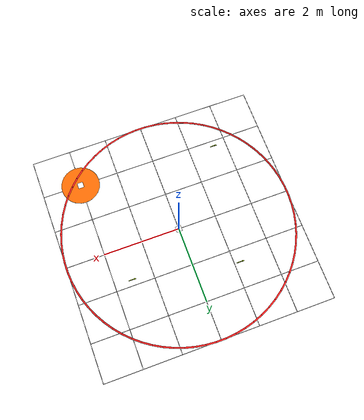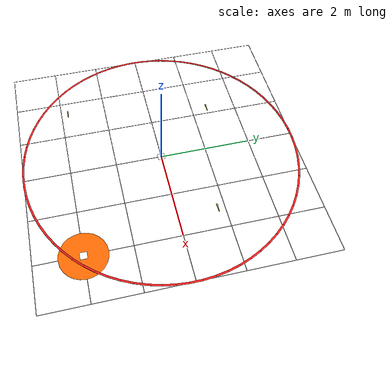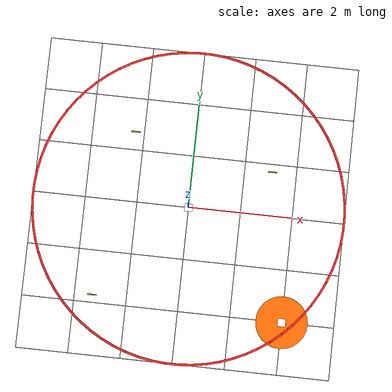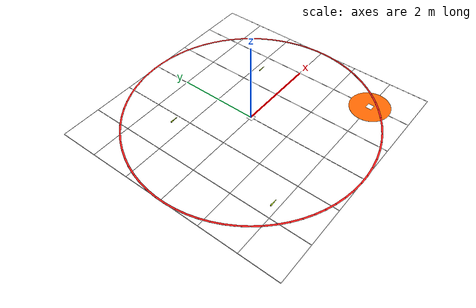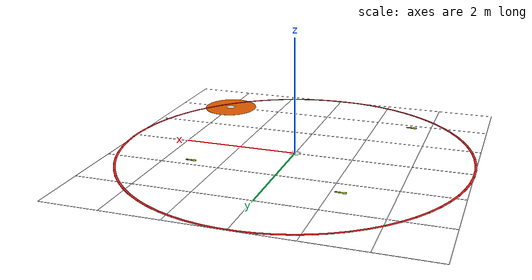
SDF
<sdf version="1.9">
 <world name="drone_cage">
  <plugin filename="gz-sim-physics-system" name="gz::sim::systems::Physics"/>
  <plugin filename="gz-sim-user-commands-system" name="gz::sim::systems::UserCommands"/>
  <plugin filename="gz-sim-scene-broadcaster-system" name="gz::sim::systems::SceneBroadcaster"/>
  <plugin filename="gz-sim-sensors-system" name="gz::sim::systems::Sensors">
   <render_engine>ogre2</render_engine>
  </plugin>
  <plugin filename="gz-sim-contact-system" name="gz::sim::systems::Contact"/>
  <plugin filename="gz-sim-imu-system" name="gz::sim::systems::Imu"/>
  <plugin filename="gz-sim-navsat-system" name="gz::sim::systems::NavSat"/>
  <plugin filename="gz-sim-magnetometer-system" name="gz::sim::systems::Magnetometer"/>
  <plugin filename="gz-sim-air-pressure-system" name="gz::sim::systems::AirPressure"/>
  <physics type="ode">
   <max_step_size>0.004</max_step_size>
   <real_time_factor>1.0</real_time_factor>
   <real_time_update_rate>250</real_time_update_rate>
  </physics>
  <gravity>0 0 -9.8</gravity>
  <magnetic_field>6e-06 2.3e-05 -4.2e-05</magnetic_field>
  <atmosphere type="adiabatic"/>
  <scene>
   <grid>false</grid>
   <ambient>0.8 0.8 0.8 1</ambient>
   <background>0.9 0.9 0.9 1</background>
   <shadows>true</shadows>
  </scene>
  <spherical_coordinates>
   <surface_model>EARTH_WGS84</surface_model>
   <world_frame_orientation>ENU</world_frame_orientation>
   <latitude_deg>47.397971057728974</latitude_deg>
   <longitude_deg>8.546163739800146</longitude_deg>
   <elevation>0</elevation>
  </spherical_coordinates>
  <light name="sunUTC" type="directional">
   <pose>0 0 500 0 0 0</pose>
   <cast_shadows>false</cast_shadows>
   <intensity>1</intensity>
   <direction>0 0 -1</direction>
   <diffuse>0.95 0.95 0.95 1</diffuse>
   <specular>0.3 0.3 0.3 1</specular>
   <attenuation><range>2000</range><linear>0</linear><constant>1</constant><quadratic>0</quadratic></attenuation>
  </light>
  <light name="light_corner_ne" type="point">
   <pose>4 4 3.5 0 0 0</pose>
   <cast_shadows>false</cast_shadows>
   <intensity>0.6</intensity>
   <diffuse>1 1 1 1</diffuse>
   <specular>0.1 0.1 0.1 1</specular>
   <attenuation>
    <range>15</range>
    <linear>0.1</linear>
    <constant>0.5</constant>
    <quadratic>0.01</quadratic>
   </attenuation>
  </light>
  <light name="light_corner_nw" type="point">
   <pose>-4 4 3.5 0 0 0</pose>
   <cast_shadows>false</cast_shadows>
   <intensity>0.6</intensity>
   <diffuse>1 1 1 1</diffuse>
   <specular>0.1 0.1 0.1 1</specular>
   <attenuation>
    <range>15</range>
    <linear>0.1</linear>
    <constant>0.5</constant>
    <quadratic>0.01</quadratic>
   </attenuation>
  </light>
  <light name="light_corner_se" type="point">
   <pose>4 -4 3.5 0 0 0</pose>
   <cast_shadows>false</cast_shadows>
   <intensity>0.6</intensity>
   <diffuse>1 1 1 1</diffuse>
   <specular>0.1 0.1 0.1 1</specular>
   <attenuation>
    <range>15</range>
    <linear>0.1</linear>
    <constant>0.5</constant>
    <quadratic>0.01</quadratic>
   </attenuation>
  </light>
  <light name="light_corner_sw" type="point">
   <pose>-4 -4 3.5 0 0 0</pose>
   <cast_shadows>false</cast_shadows>
   <intensity>0.6</intensity>
   <diffuse>1 1 1 1</diffuse>
   <specular>0.1 0.1 0.1 1</specular>
   <attenuation>
    <range>15</range>
    <linear>0.1</linear>
    <constant>0.5</constant>
    <quadratic>0.01</quadratic>
   </attenuation>
  </light>
  <light name="light_center" type="point">
   <pose>0 0 3.8 0 0 0</pose>
   <cast_shadows>false</cast_shadows>
   <intensity>1.2</intensity>
   <diffuse>1 1 1 1</diffuse>
   <specular>0.2 0.2 0.2 1</specular>
   <attenuation>
    <range>10</range>
    <linear>0.05</linear>
    <constant>0.3</constant>
    <quadratic>0.01</quadratic>
   </attenuation>
  </light>
  <model name="aruco_liftoff_101">
   <static>true</static>
   <pose>0 0 0.004 0 0 0</pose>
   <link name="base">
    <visual name="visual">
     <geometry><plane><normal>0 0 1</normal><size>0.15 0.15</size></plane></geometry>
     <material>
      <diffuse>1 1 1 1</diffuse>
      <specular>0.4 0.4 0.4 1</specular>
      <pbr><metal><albedo_map>models://aruco_101/materials/textures/aruco_101.png</albedo_map></metal></pbr>
     </material>
    </visual>
   </link>
  </model>
  <model name="landing_target_disc">
   <static>true</static>
   <pose>2.0 -2.0 0.002 0 0 0</pose>
   <link name="link">
    <visual name="visual">
     <geometry><cylinder><radius>0.5</radius><length>0.002</length></cylinder></geometry>
     <material>
      <ambient>1.0 0.4 0.0 1</ambient>
      <diffuse>1.0 0.4 0.0 1</diffuse>
      <specular>0.2 0.1 0.0 1</specular>
     </material>
    </visual>
   </link>
  </model>
  <model name="aruco_landing_102">
   <static>true</static>
   <pose>2.0 -2.0 0.005 0 0 0</pose>
   <link name="base">
    <visual name="visual">
     <geometry><plane><normal>0 0 1</normal><size>0.15 0.15</size></plane></geometry>
     <material>
      <diffuse>1 1 1 1</diffuse>
      <specular>0.4 0.4 0.4 1</specular>
      <pbr><metal><albedo_map>models://aruco_102/materials/textures/aruco_102.png</albedo_map></metal></pbr>
     </material>
    </visual>
   </link>
  </model>
  <include>
   <uri>model://probe_yellow_green</uri>
   <name>probe_sector_A1</name>
   <pose>1.45 0.85 0.015 0 1.5708 0</pose>
  </include>
  <include>
   <uri>model://probe_yellow_green</uri>
   <name>probe_sector_B2</name>
   <pose>-1.75 -1.85 0.015 0 1.5708 0</pose>
  </include>
  <include>
   <uri>model://probe_yellow_green</uri>
   <name>probe_sector_C1</name>
   <pose>-1.25 1.35 0.015 0 1.5708 0</pose>
  </include>
  <model name="grid_x0">
   <static>true</static>
   <pose>0 0 0.001 0 0 0</pose>
   <link name="link">
    <visual name="visual">
     <geometry><box><size>0.01 6.0 0.001</size></box></geometry>
     <material><ambient>0.5 0.5 0.5 0.5</ambient><diffuse>0.5 0.5 0.5 0.5</diffuse></material>
    </visual>
   </link>
  </model>
  <model name="grid_y0">
   <static>true</static>
   <pose>0 0 0.001 0 0 0</pose>
   <link name="link">
    <visual name="visual">
     <geometry><box><size>6.0 0.01 0.001</size></box></geometry>
     <material><ambient>0.5 0.5 0.5 0.5</ambient><diffuse>0.5 0.5 0.5 0.5</diffuse></material>
    </visual>
   </link>
  </model>
  <model name="grid_x1">
   <static>true</static>
   <pose>1.0 0 0.001 0 0 0</pose>
   <link name="link">
    <visual name="visual">
     <geometry><box><size>0.01 6.0 0.001</size></box></geometry>
     <material><ambient>0.5 0.5 0.5 0.3</ambient><diffuse>0.5 0.5 0.5 0.3</diffuse></material>
    </visual>
   </link>
  </model>
  <model name="grid_xn1">
   <static>true</static>
   <pose>-1.0 0 0.001 0 0 0</pose>
   <link name="link">
    <visual name="visual">
     <geometry><box><size>0.01 6.0 0.001</size></box></geometry>
     <material><ambient>0.5 0.5 0.5 0.3</ambient><diffuse>0.5 0.5 0.5 0.3</diffuse></material>
    </visual>
   </link>
  </model>
  <model name="grid_x2">
   <static>true</static>
   <pose>2.0 0 0.001 0 0 0</pose>
   <link name="link">
    <visual name="visual">
     <geometry><box><size>0.01 6.0 0.001</size></box></geometry>
     <material><ambient>0.5 0.5 0.5 0.3</ambient><diffuse>0.5 0.5 0.5 0.3</diffuse></material>
    </visual>
   </link>
  </model>
  <model name="grid_xn2">
   <static>true</static>
   <pose>-2.0 0 0.001 0 0 0</pose>
   <link name="link">
    <visual name="visual">
     <geometry><box><size>0.01 6.0 0.001</size></box></geometry>
     <material><ambient>0.5 0.5 0.5 0.3</ambient><diffuse>0.5 0.5 0.5 0.3</diffuse></material>
    </visual>
   </link>
  </model>
  <model name="grid_x3">
   <static>true</static>
   <pose>3.0 0 0.001 0 0 0</pose>
   <link name="link">
    <visual name="visual">
     <geometry><box><size>0.01 6.0 0.001</size></box></geometry>
     <material><ambient>0.5 0.5 0.5 0.3</ambient><diffuse>0.5 0.5 0.5 0.3</diffuse></material>
    </visual>
   </link>
  </model>
  <model name="grid_xn3">
   <static>true</static>
   <pose>-3.0 0 0.001 0 0 0</pose>
   <link name="link">
    <visual name="visual">
     <geometry><box><size>0.01 6.0 0.001</size></box></geometry>
     <material><ambient>0.5 0.5 0.5 0.3</ambient><diffuse>0.5 0.5 0.5 0.3</diffuse></material>
    </visual>
   </link>
  </model>
  <model name="grid_y1">
   <static>true</static>
   <pose>0 1.0 0.001 0 0 0</pose>
   <link name="link">
    <visual name="visual">
     <geometry><box><size>6.0 0.01 0.001</size></box></geometry>
     <material><ambient>0.5 0.5 0.5 0.3</ambient><diffuse>0.5 0.5 0.5 0.3</diffuse></material>
    </visual>
   </link>
  </model>
  <model name="grid_yn1">
   <static>true</static>
   <pose>0 -1.0 0.001 0 0 0</pose>
   <link name="link">
    <visual name="visual">
     <geometry><box><size>6.0 0.01 0.001</size></box></geometry>
     <material><ambient>0.5 0.5 0.5 0.3</ambient><diffuse>0.5 0.5 0.5 0.3</diffuse></material>
    </visual>
   </link>
  </model>
  <model name="grid_y2">
   <static>true</static>
   <pose>0 2.0 0.001 0 0 0</pose>
   <link name="link">
    <visual name="visual">
     <geometry><box><size>6.0 0.01 0.001</size></box></geometry>
     <material><ambient>0.5 0.5 0.5 0.3</ambient><diffuse>0.5 0.5 0.5 0.3</diffuse></material>
    </visual>
   </link>
  </model>
  <model name="grid_yn2">
   <static>true</static>
   <pose>0 -2.0 0.001 0 0 0</pose>
   <link name="link">
    <visual name="visual">
     <geometry><box><size>6.0 0.01 0.001</size></box></geometry>
     <material><ambient>0.5 0.5 0.5 0.3</ambient><diffuse>0.5 0.5 0.5 0.3</diffuse></material>
    </visual>
   </link>
  </model>
  <model name="grid_y3">
   <static>true</static>
   <pose>0 3.0 0.001 0 0 0</pose>
   <link name="link">
    <visual name="visual">
     <geometry><box><size>6.0 0.01 0.001</size></box></geometry>
     <material><ambient>0.5 0.5 0.5 0.3</ambient><diffuse>0.5 0.5 0.5 0.3</diffuse></material>
    </visual>
   </link>
  </model>
  <model name="grid_yn3">
   <static>true</static>
   <pose>0 -3.0 0.001 0 0 0</pose>
   <link name="link">
    <visual name="visual">
     <geometry><box><size>6.0 0.01 0.001</size></box></geometry>
     <material><ambient>0.5 0.5 0.5 0.3</ambient><diffuse>0.5 0.5 0.5 0.3</diffuse></material>
    </visual>
   </link>
  </model>
  <gravity>0 0 -9.8</gravity>
  <magnetic_field>6e-06 2.3e-05 -4.2e-05</magnetic_field>
  <atmosphere type="adiabatic"/>
  <scene>
   <grid>false</grid>
   <ambient>0.4 0.4 0.4 1</ambient>
   <background>0.7 0.7 0.7 1</background>
   <shadows>true</shadows>
  </scene>
  <model name="marker102_boundary_3m">
   <static>true</static>
   <link name="link">
    <visual name="seg_0">
     <pose>3.0000 0.0000 0.01 0 0 1.5708</pose>
     <geometry><box><size>0.2618 0.04 0.002</size></box></geometry>
     <material>
      <ambient>1 0.1 0.1 1</ambient>
      <diffuse>1 0.1 0.1 1</diffuse>
      <emissive>0.3 0 0 1</emissive>
     </material>
    </visual>
    <visual name="seg_1">
     <pose>2.9886 0.2615 0.01 0 0 1.6581</pose>
     <geometry><box><size>0.2618 0.04 0.002</size></box></geometry>
     <material>
      <ambient>1 0.1 0.1 1</ambient>
      <diffuse>1 0.1 0.1 1</diffuse>
      <emissive>0.3 0 0 1</emissive>
     </material>
    </visual>
    <visual name="seg_2">
     <pose>2.9544 0.5209 0.01 0 0 1.7453</pose>
     <geometry><box><size>0.2618 0.04 0.002</size></box></geometry>
     <material>
      <ambient>1 0.1 0.1 1</ambient>
      <diffuse>1 0.1 0.1 1</diffuse>
      <emissive>0.3 0 0 1</emissive>
     </material>
    </visual>
    <visual name="seg_3">
     <pose>2.8978 0.7765 0.01 0 0 1.8326</pose>
     <geometry><box><size>0.2618 0.04 0.002</size></box></geometry>
     <material>
      <ambient>1 0.1 0.1 1</ambient>
      <diffuse>1 0.1 0.1 1</diffuse>
      <emissive>0.3 0 0 1</emissive>
     </material>
    </visual>
    <visual name="seg_4">
     <pose>2.8191 1.0261 0.01 0 0 1.9199</pose>
     <geometry><box><size>0.2618 0.04 0.002</size></box></geometry>
     <material>
      <ambient>1 0.1 0.1 1</ambient>
      <diffuse>1 0.1 0.1 1</diffuse>
      <emissive>0.3 0 0 1</emissive>
     </material>
    </visual>
    <visual name="seg_5">
     <pose>2.7189 1.2679 0.01 0 0 2.0071</pose>
     <geometry><box><size>0.2618 0.04 0.002</size></box></geometry>
     <material>
      <ambient>1 0.1 0.1 1</ambient>
      <diffuse>1 0.1 0.1 1</diffuse>
      <emissive>0.3 0 0 1</emissive>
     </material>
    </visual>
    <visual name="seg_6">
     <pose>2.5981 1.5000 0.01 0 0 2.0944</pose>
     <geometry><box><size>0.2618 0.04 0.002</size></box></geometry>
     <material>
      <ambient>1 0.1 0.1 1</ambient>
      <diffuse>1 0.1 0.1 1</diffuse>
      <emissive>0.3 0 0 1</emissive>
     </material>
    </visual>
    <visual name="seg_7">
     <pose>2.4575 1.7207 0.01 0 0 2.1817</pose>
     <geometry><box><size>0.2618 0.04 0.002</size></box></geometry>
     <material>
      <ambient>1 0.1 0.1 1</ambient>
      <diffuse>1 0.1 0.1 1</diffuse>
      <emissive>0.3 0 0 1</emissive>
     </material>
    </visual>
    <visual name="seg_8">
     <pose>2.2981 1.9284 0.01 0 0 2.2689</pose>
     <geometry><box><size>0.2618 0.04 0.002</size></box></geometry>
     <material>
      <ambient>1 0.1 0.1 1</ambient>
      <diffuse>1 0.1 0.1 1</diffuse>
      <emissive>0.3 0 0 1</emissive>
     </material>
    </visual>
    <visual name="seg_9">
     <pose>2.1213 2.1213 0.01 0 0 2.3562</pose>
     <geometry><box><size>0.2618 0.04 0.002</size></box></geometry>
     <material>
      <ambient>1 0.1 0.1 1</ambient>
      <diffuse>1 0.1 0.1 1</diffuse>
      <emissive>0.3 0 0 1</emissive>
     </material>
    </visual>
    <visual name="seg_10">
     <pose>1.9284 2.2981 0.01 0 0 2.4435</pose>
     <geometry><box><size>0.2618 0.04 0.002</size></box></geometry>
     <material>
      <ambient>1 0.1 0.1 1</ambient>
      <diffuse>1 0.1 0.1 1</diffuse>
      <emissive>0.3 0 0 1</emissive>
     </material>
    </visual>
    <visual name="seg_11">
     <pose>1.7207 2.4575 0.01 0 0 2.5307</pose>
     <geometry><box><size>0.2618 0.04 0.002</size></box></geometry>
     <material>
      <ambient>1 0.1 0.1 1</ambient>
      <diffuse>1 0.1 0.1 1</diffuse>
      <emissive>0.3 0 0 1</emissive>
     </material>
    </visual>
    <visual name="seg_12">
     <pose>1.5000 2.5981 0.01 0 0 2.6180</pose>
     <geometry><box><size>0.2618 0.04 0.002</size></box></geometry>
     <material>
      <ambient>1 0.1 0.1 1</ambient>
      <diffuse>1 0.1 0.1 1</diffuse>
      <emissive>0.3 0 0 1</emissive>
     </material>
    </visual>
    <visual name="seg_13">
     <pose>1.2679 2.7189 0.01 0 0 2.7053</pose>
     <geometry><box><size>0.2618 0.04 0.002</size></box></geometry>
     <material>
      <ambient>1 0.1 0.1 1</ambient>
      <diffuse>1 0.1 0.1 1</diffuse>
      <emissive>0.3 0 0 1</emissive>
     </material>
    </visual>
    <visual name="seg_14">
     <pose>1.0261 2.8191 0.01 0 0 2.7925</pose>
     <geometry><box><size>0.2618 0.04 0.002</size></box></geometry>
     <material>
      <ambient>1 0.1 0.1 1</ambient>
      <diffuse>1 0.1 0.1 1</diffuse>
      <emissive>0.3 0 0 1</emissive>
     </material>
    </visual>
    <visual name="seg_15">
     <pose>0.7765 2.8978 0.01 0 0 2.8798</pose>
     <geometry><box><size>0.2618 0.04 0.002</size></box></geometry>
     <material>
      <ambient>1 0.1 0.1 1</ambient>
      <diffuse>1 0.1 0.1 1</diffuse>
      <emissive>0.3 0 0 1</emissive>
     </material>
    </visual>
    <visual name="seg_16">
     <pose>0.5209 2.9544 0.01 0 0 2.9671</pose>
     <geometry><box><size>0.2618 0.04 0.002</size></box></geometry>
     <material>
      <ambient>1 0.1 0.1 1</ambient>
      <diffuse>1 0.1 0.1 1</diffuse>
      <emissive>0.3 0 0 1</emissive>
     </material>
    </visual>
    <visual name="seg_17">
     <pose>0.2615 2.9886 0.01 0 0 3.0543</pose>
     <geometry><box><size>0.2618 0.04 0.002</size></box></geometry>
     <material>
      <ambient>1 0.1 0.1 1</ambient>
      <diffuse>1 0.1 0.1 1</diffuse>
      <emissive>0.3 0 0 1</emissive>
     </material>
    </visual>
    <visual name="seg_18">
     <pose>0.0000 3.0000 0.01 0 0 3.1416</pose>
     <geometry><box><size>0.2618 0.04 0.002</size></box></geometry>
     <material>
      <ambient>1 0.1 0.1 1</ambient>
      <diffuse>1 0.1 0.1 1</diffuse>
      <emissive>0.3 0 0 1</emissive>
     </material>
    </visual>
    <visual name="seg_19">
     <pose>-0.2615 2.9886 0.01 0 0 3.2289</pose>
     <geometry><box><size>0.2618 0.04 0.002</size></box></geometry>
     <material>
      <ambient>1 0.1 0.1 1</ambient>
      <diffuse>1 0.1 0.1 1</diffuse>
      <emissive>0.3 0 0 1</emissive>
     </material>
    </visual>
    <visual name="seg_20">
     <pose>-0.5209 2.9544 0.01 0 0 3.3161</pose>
     <geometry><box><size>0.2618 0.04 0.002</size></box></geometry>
     <material>
      <ambient>1 0.1 0.1 1</ambient>
      <diffuse>1 0.1 0.1 1</diffuse>
      <emissive>0.3 0 0 1</emissive>
     </material>
    </visual>
    <visual name="seg_21">
     <pose>-0.7765 2.8978 0.01 0 0 3.4034</pose>
     <geometry><box><size>0.2618 0.04 0.002</size></box></geometry>
     <material>
      <ambient>1 0.1 0.1 1</ambient>
      <diffuse>1 0.1 0.1 1</diffuse>
      <emissive>0.3 0 0 1</emissive>
     </material>
    </visual>
    <visual name="seg_22">
     <pose>-1.0261 2.8191 0.01 0 0 3.4907</pose>
     <geometry><box><size>0.2618 0.04 0.002</size></box></geometry>
     <material>
      <ambient>1 0.1 0.1 1</ambient>
      <diffuse>1 0.1 0.1 1</diffuse>
      <emissive>0.3 0 0 1</emissive>
     </material>
    </visual>
    <visual name="seg_23">
     <pose>-1.2679 2.7189 0.01 0 0 3.5779</pose>
     <geometry><box><size>0.2618 0.04 0.002</size></box></geometry>
     <material>
      <ambient>1 0.1 0.1 1</ambient>
      <diffuse>1 0.1 0.1 1</diffuse>
      <emissive>0.3 0 0 1</emissive>
     </material>
    </visual>
    <visual name="seg_24">
     <pose>-1.5000 2.5981 0.01 0 0 3.6652</pose>
     <geometry><box><size>0.2618 0.04 0.002</size></box></geometry>
     <material>
      <ambient>1 0.1 0.1 1</ambient>
      <diffuse>1 0.1 0.1 1</diffuse>
      <emissive>0.3 0 0 1</emissive>
     </material>
    </visual>
    <visual name="seg_25">
     <pose>-1.7207 2.4575 0.01 0 0 3.7525</pose>
     <geometry><box><size>0.2618 0.04 0.002</size></box></geometry>
     <material>
      <ambient>1 0.1 0.1 1</ambient>
      <diffuse>1 0.1 0.1 1</diffuse>
      <emissive>0.3 0 0 1</emissive>
     </material>
    </visual>
    <visual name="seg_26">
     <pose>-1.9284 2.2981 0.01 0 0 3.8397</pose>
     <geometry><box><size>0.2618 0.04 0.002</size></box></geometry>
     <material>
      <ambient>1 0.1 0.1 1</ambient>
      <diffuse>1 0.1 0.1 1</diffuse>
      <emissive>0.3 0 0 1</emissive>
     </material>
    </visual>
    <visual name="seg_27">
     <pose>-2.1213 2.1213 0.01 0 0 3.9270</pose>
     <geometry><box><size>0.2618 0.04 0.002</size></box></geometry>
     <material>
      <ambient>1 0.1 0.1 1</ambient>
      <diffuse>1 0.1 0.1 1</diffuse>
      <emissive>0.3 0 0 1</emissive>
     </material>
    </visual>
    <visual name="seg_28">
     <pose>-2.2981 1.9284 0.01 0 0 4.0143</pose>
     <geometry><box><size>0.2618 0.04 0.002</size></box></geometry>
     <material>
      <ambient>1 0.1 0.1 1</ambient>
      <diffuse>1 0.1 0.1 1</diffuse>
      <emissive>0.3 0 0 1</emissive>
     </material>
    </visual>
    <visual name="seg_29">
     <pose>-2.4575 1.7207 0.01 0 0 4.1015</pose>
     <geometry><box><size>0.2618 0.04 0.002</size></box></geometry>
     <material>
      <ambient>1 0.1 0.1 1</ambient>
      <diffuse>1 0.1 0.1 1</diffuse>
      <emissive>0.3 0 0 1</emissive>
     </material>
    </visual>
    <visual name="seg_30">
     <pose>-2.5981 1.5000 0.01 0 0 4.1888</pose>
     <geometry><box><size>0.2618 0.04 0.002</size></box></geometry>
     <material>
      <ambient>1 0.1 0.1 1</ambient>
      <diffuse>1 0.1 0.1 1</diffuse>
      <emissive>0.3 0 0 1</emissive>
     </material>
    </visual>
    <visual name="seg_31">
     <pose>-2.7189 1.2679 0.01 0 0 4.2761</pose>
     <geometry><box><size>0.2618 0.04 0.002</size></box></geometry>
     <material>
      <ambient>1 0.1 0.1 1</ambient>
      <diffuse>1 0.1 0.1 1</diffuse>
      <emissive>0.3 0 0 1</emissive>
     </material>
    </visual>
    <visual name="seg_32">
     <pose>-2.8191 1.0261 0.01 0 0 4.3633</pose>
     <geometry><box><size>0.2618 0.04 0.002</size></box></geometry>
     <material>
      <ambient>1 0.1 0.1 1</ambient>
      <diffuse>1 0.1 0.1 1</diffuse>
      <emissive>0.3 0 0 1</emissive>
     </material>
    </visual>
    <visual name="seg_33">
     <pose>-2.8978 0.7765 0.01 0 0 4.4506</pose>
     <geometry><box><size>0.2618 0.04 0.002</size></box></geometry>
     <material>
      <ambient>1 0.1 0.1 1</ambient>
      <diffuse>1 0.1 0.1 1</diffuse>
      <emissive>0.3 0 0 1</emissive>
     </material>
    </visual>
    <visual name="seg_34">
     <pose>-2.9544 0.5209 0.01 0 0 4.5379</pose>
     <geometry><box><size>0.2618 0.04 0.002</size></box></geometry>
     <material>
      <ambient>1 0.1 0.1 1</ambient>
      <diffuse>1 0.1 0.1 1</diffuse>
      <emissive>0.3 0 0 1</emissive>
     </material>
    </visual>
    <visual name="seg_35">
     <pose>-2.9886 0.2615 0.01 0 0 4.6251</pose>
     <geometry><box><size>0.2618 0.04 0.002</size></box></geometry>
     <material>
      <ambient>1 0.1 0.1 1</ambient>
      <diffuse>1 0.1 0.1 1</diffuse>
      <emissive>0.3 0 0 1</emissive>
     </material>
    </visual>
    <visual name="seg_36">
     <pose>-3.0000 0.0000 0.01 0 0 4.7124</pose>
     <geometry><box><size>0.2618 0.04 0.002</size></box></geometry>
     <material>
      <ambient>1 0.1 0.1 1</ambient>
      <diffuse>1 0.1 0.1 1</diffuse>
      <emissive>0.3 0 0 1</emissive>
     </material>
    </visual>
    <visual name="seg_37">
     <pose>-2.9886 -0.2615 0.01 0 0 4.7997</pose>
     <geometry><box><size>0.2618 0.04 0.002</size></box></geometry>
     <material>
      <ambient>1 0.1 0.1 1</ambient>
      <diffuse>1 0.1 0.1 1</diffuse>
      <emissive>0.3 0 0 1</emissive>
     </material>
    </visual>
    <visual name="seg_38">
     <pose>-2.9544 -0.5209 0.01 0 0 4.8869</pose>
     <geometry><box><size>0.2618 0.04 0.002</size></box></geometry>
     <material>
      <ambient>1 0.1 0.1 1</ambient>
      <diffuse>1 0.1 0.1 1</diffuse>
      <emissive>0.3 0 0 1</emissive>
     </material>
    </visual>
    <visual name="seg_39">
     <pose>-2.8978 -0.7765 0.01 0 0 4.9742</pose>
     <geometry><box><size>0.2618 0.04 0.002</size></box></geometry>
     <material>
      <ambient>1 0.1 0.1 1</ambient>
      <diffuse>1 0.1 0.1 1</diffuse>
      <emissive>0.3 0 0 1</emissive>
     </material>
    </visual>
    <visual name="seg_40">
     <pose>-2.8191 -1.0261 0.01 0 0 5.0615</pose>
     <geometry><box><size>0.2618 0.04 0.002</size></box></geometry>
     <material>
      <ambient>1 0.1 0.1 1</ambient>
      <diffuse>1 0.1 0.1 1</diffuse>
      <emissive>0.3 0 0 1</emissive>
     </material>
    </visual>
    <visual name="seg_41">
     <pose>-2.7189 -1.2679 0.01 0 0 5.1487</pose>
     <geometry><box><size>0.2618 0.04 0.002</size></box></geometry>
     <material>
      <ambient>1 0.1 0.1 1</ambient>
      <diffuse>1 0.1 0.1 1</diffuse>
      <emissive>0.3 0 0 1</emissive>
     </material>
    </visual>
    <visual name="seg_42">
     <pose>-2.5981 -1.5000 0.01 0 0 5.2360</pose>
     <geometry><box><size>0.2618 0.04 0.002</size></box></geometry>
     <material>
      <ambient>1 0.1 0.1 1</ambient>
      <diffuse>1 0.1 0.1 1</diffuse>
      <emissive>0.3 0 0 1</emissive>
     </material>
    </visual>
    <visual name="seg_43">
     <pose>-2.4575 -1.7207 0.01 0 0 5.3233</pose>
     <geometry><box><size>0.2618 0.04 0.002</size></box></geometry>
     <material>
      <ambient>1 0.1 0.1 1</ambient>
      <diffuse>1 0.1 0.1 1</diffuse>
      <emissive>0.3 0 0 1</emissive>
     </material>
    </visual>
    <visual name="seg_44">
     <pose>-2.2981 -1.9284 0.01 0 0 5.4105</pose>
     <geometry><box><size>0.2618 0.04 0.002</size></box></geometry>
     <material>
      <ambient>1 0.1 0.1 1</ambient>
      <diffuse>1 0.1 0.1 1</diffuse>
      <emissive>0.3 0 0 1</emissive>
     </material>
    </visual>
    <visual name="seg_45">
     <pose>-2.1213 -2.1213 0.01 0 0 5.4978</pose>
     <geometry><box><size>0.2618 0.04 0.002</size></box></geometry>
     <material>
      <ambient>1 0.1 0.1 1</ambient>
      <diffuse>1 0.1 0.1 1</diffuse>
      <emissive>0.3 0 0 1</emissive>
     </material>
    </visual>
    <visual name="seg_46">
     <pose>-1.9284 -2.2981 0.01 0 0 5.5851</pose>
     <geometry><box><size>0.2618 0.04 0.002</size></box></geometry>
     <material>
      <ambient>1 0.1 0.1 1</ambient>
      <diffuse>1 0.1 0.1 1</diffuse>
      <emissive>0.3 0 0 1</emissive>
     </material>
    </visual>
    <visual name="seg_47">
     <pose>-1.7207 -2.4575 0.01 0 0 5.6723</pose>
     <geometry><box><size>0.2618 0.04 0.002</size></box></geometry>
     <material>
      <ambient>1 0.1 0.1 1</ambient>
      <diffuse>1 0.1 0.1 1</diffuse>
      <emissive>0.3 0 0 1</emissive>
     </material>
    </visual>
    <visual name="seg_48">
     <pose>-1.5000 -2.5981 0.01 0 0 5.7596</pose>
     <geometry><box><size>0.2618 0.04 0.002</size></box></geometry>
     <material>
      <ambient>1 0.1 0.1 1</ambient>
      <diffuse>1 0.1 0.1 1</diffuse>
      <emissive>0.3 0 0 1</emissive>
     </material>
    </visual>
    <visual name="seg_49">
     <pose>-1.2679 -2.7189 0.01 0 0 5.8469</pose>
     <geometry><box><size>0.2618 0.04 0.002</size></box></geometry>
     <material>
      <ambient>1 0.1 0.1 1</ambient>
      <diffuse>1 0.1 0.1 1</diffuse>
      <emissive>0.3 0 0 1</emissive>
     </material>
    </visual>
    <visual name="seg_50">
     <pose>-1.0261 -2.8191 0.01 0 0 5.9341</pose>
     <geometry><box><size>0.2618 0.04 0.002</size></box></geometry>
     <material>
      <ambient>1 0.1 0.1 1</ambient>
      <diffuse>1 0.1 0.1 1</diffuse>
      <emissive>0.3 0 0 1</emissive>
     </material>
    </visual>
    <visual name="seg_51">
     <pose>-0.7765 -2.8978 0.01 0 0 6.0214</pose>
     <geometry><box><size>0.2618 0.04 0.002</size></box></geometry>
     <material>
      <ambient>1 0.1 0.1 1</ambient>
      <diffuse>1 0.1 0.1 1</diffuse>
      <emissive>0.3 0 0 1</emissive>
     </material>
    </visual>
    <visual name="seg_52">
     <pose>-0.5209 -2.9544 0.01 0 0 6.1087</pose>
     <geometry><box><size>0.2618 0.04 0.002</size></box></geometry>
     <material>
      <ambient>1 0.1 0.1 1</ambient>
      <diffuse>1 0.1 0.1 1</diffuse>
      <emissive>0.3 0 0 1</emissive>
     </material>
    </visual>
    <visual name="seg_53">
     <pose>-0.2615 -2.9886 0.01 0 0 6.1959</pose>
     <geometry><box><size>0.2618 0.04 0.002</size></box></geometry>
     <material>
      <ambient>1 0.1 0.1 1</ambient>
      <diffuse>1 0.1 0.1 1</diffuse>
      <emissive>0.3 0 0 1</emissive>
     </material>
    </visual>
    <visual name="seg_54">
     <pose>-0.0000 -3.0000 0.01 0 0 6.2832</pose>
     <geometry><box><size>0.2618 0.04 0.002</size></box></geometry>
     <material>
      <ambient>1 0.1 0.1 1</ambient>
      <diffuse>1 0.1 0.1 1</diffuse>
      <emissive>0.3 0 0 1</emissive>
     </material>
    </visual>
    <visual name="seg_55">
     <pose>0.2615 -2.9886 0.01 0 0 6.3705</pose>
     <geometry><box><size>0.2618 0.04 0.002</size></box></geometry>
     <material>
      <ambient>1 0.1 0.1 1</ambient>
      <diffuse>1 0.1 0.1 1</diffuse>
      <emissive>0.3 0 0 1</emissive>
     </material>
    </visual>
    <visual name="seg_56">
     <pose>0.5209 -2.9544 0.01 0 0 6.4577</pose>
     <geometry><box><size>0.2618 0.04 0.002</size></box></geometry>
     <material>
      <ambient>1 0.1 0.1 1</ambient>
      <diffuse>1 0.1 0.1 1</diffuse>
      <emissive>0.3 0 0 1</emissive>
     </material>
    </visual>
    <visual name="seg_57">
     <pose>0.7765 -2.8978 0.01 0 0 6.5450</pose>
     <geometry><box><size>0.2618 0.04 0.002</size></box></geometry>
     <material>
      <ambient>1 0.1 0.1 1</ambient>
      <diffuse>1 0.1 0.1 1</diffuse>
      <emissive>0.3 0 0 1</emissive>
     </material>
    </visual>
    <visual name="seg_58">
     <pose>1.0261 -2.8191 0.01 0 0 6.6323</pose>
     <geometry><box><size>0.2618 0.04 0.002</size></box></geometry>
     <material>
      <ambient>1 0.1 0.1 1</ambient>
      <diffuse>1 0.1 0.1 1</diffuse>
      <emissive>0.3 0 0 1</emissive>
     </material>
    </visual>
    <visual name="seg_59">
     <pose>1.2679 -2.7189 0.01 0 0 6.7195</pose>
     <geometry><box><size>0.2618 0.04 0.002</size></box></geometry>
     <material>
      <ambient>1 0.1 0.1 1</ambient>
      <diffuse>1 0.1 0.1 1</diffuse>
      <emissive>0.3 0 0 1</emissive>
     </material>
    </visual>
    <visual name="seg_60">
     <pose>1.5000 -2.5981 0.01 0 0 6.8068</pose>
     <geometry><box><size>0.2618 0.04 0.002</size></box></geometry>
     <material>
      <ambient>1 0.1 0.1 1</ambient>
      <diffuse>1 0.1 0.1 1</diffuse>
      <emissive>0.3 0 0 1</emissive>
     </material>
    </visual>
    <visual name="seg_61">
     <pose>1.7207 -2.4575 0.01 0 0 6.8941</pose>
     <geometry><box><size>0.2618 0.04 0.002</size></box></geometry>
     <material>
      <ambient>1 0.1 0.1 1</ambient>
      <diffuse>1 0.1 0.1 1</diffuse>
      <emissive>0.3 0 0 1</emissive>
     </material>
    </visual>
    <visual name="seg_62">
     <pose>1.9284 -2.2981 0.01 0 0 6.9813</pose>
     <geometry><box><size>0.2618 0.04 0.002</size></box></geometry>
     <material>
      <ambient>1 0.1 0.1 1</ambient>
      <diffuse>1 0.1 0.1 1</diffuse>
      <emissive>0.3 0 0 1</emissive>
     </material>
    </visual>
    <visual name="seg_63">
     <pose>2.1213 -2.1213 0.01 0 0 7.0686</pose>
     <geometry><box><size>0.2618 0.04 0.002</size></box></geometry>
     <material>
      <ambient>1 0.1 0.1 1</ambient>
      <diffuse>1 0.1 0.1 1</diffuse>
      <emissive>0.3 0 0 1</emissive>
     </material>
    </visual>
    <visual name="seg_64">
     <pose>2.2981 -1.9284 0.01 0 0 7.1558</pose>
     <geometry><box><size>0.2618 0.04 0.002</size></box></geometry>
     <material>
      <ambient>1 0.1 0.1 1</ambient>
      <diffuse>1 0.1 0.1 1</diffuse>
      <emissive>0.3 0 0 1</emissive>
     </material>
    </visual>
    <visual name="seg_65">
     <pose>2.4575 -1.7207 0.01 0 0 7.2431</pose>
     <geometry><box><size>0.2618 0.04 0.002</size></box></geometry>
     <material>
      <ambient>1 0.1 0.1 1</ambient>
      <diffuse>1 0.1 0.1 1</diffuse>
      <emissive>0.3 0 0 1</emissive>
     </material>
    </visual>
    <visual name="seg_66">
     <pose>2.5981 -1.5000 0.01 0 0 7.3304</pose>
     <geometry><box><size>0.2618 0.04 0.002</size></box></geometry>
     <material>
      <ambient>1 0.1 0.1 1</ambient>
      <diffuse>1 0.1 0.1 1</diffuse>
      <emissive>0.3 0 0 1</emissive>
     </material>
    </visual>
    <visual name="seg_67">
     <pose>2.7189 -1.2679 0.01 0 0 7.4176</pose>
     <geometry><box><size>0.2618 0.04 0.002</size></box></geometry>
     <material>
      <ambient>1 0.1 0.1 1</ambient>
      <diffuse>1 0.1 0.1 1</diffuse>
      <emissive>0.3 0 0 1</emissive>
     </material>
    </visual>
    <visual name="seg_68">
     <pose>2.8191 -1.0261 0.01 0 0 7.5049</pose>
     <geometry><box><size>0.2618 0.04 0.002</size></box></geometry>
     <material>
      <ambient>1 0.1 0.1 1</ambient>
      <diffuse>1 0.1 0.1 1</diffuse>
      <emissive>0.3 0 0 1</emissive>
     </material>
    </visual>
    <visual name="seg_69">
     <pose>2.8978 -0.7765 0.01 0 0 7.5922</pose>
     <geometry><box><size>0.2618 0.04 0.002</size></box></geometry>
     <material>
      <ambient>1 0.1 0.1 1</ambient>
      <diffuse>1 0.1 0.1 1</diffuse>
      <emissive>0.3 0 0 1</emissive>
     </material>
    </visual>
    <visual name="seg_70">
     <pose>2.9544 -0.5209 0.01 0 0 7.6794</pose>
     <geometry><box><size>0.2618 0.04 0.002</size></box></geometry>
     <material>
      <ambient>1 0.1 0.1 1</ambient>
      <diffuse>1 0.1 0.1 1</diffuse>
      <emissive>0.3 0 0 1</emissive>
     </material>
    </visual>
    <visual name="seg_71">
     <pose>2.9886 -0.2615 0.01 0 0 7.7667</pose>
     <geometry><box><size>0.2618 0.04 0.002</size></box></geometry>
     <material>
      <ambient>1 0.1 0.1 1</ambient>
      <diffuse>1 0.1 0.1 1</diffuse>
      <emissive>0.3 0 0 1</emissive>
     </material>
    </visual>
   </link>
  </model>
 </world>
</sdf>

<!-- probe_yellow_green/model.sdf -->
<sdf version="1.9">
  <model name="probe_yellow_green">
    <static>true</static>
    <link name="link">
      <!-- collision kept as a simple bounding cylinder (0-0.20m tall, 15mm radius)
           for cheap physics/lidar interaction; the visual mesh carries the real shape -->
      <collision name="collision">
        <pose>0 0 0.1 0 0 0</pose>
        <geometry>
          <cylinder>
            <radius>0.015</radius>
            <length>0.2</length>
          </cylinder>
        </geometry>
      </collision>
      <visual name="visual">
        <geometry>
          <mesh>
            <uri>model://probe_yellow_green/probe.stl</uri>
          </mesh>
        </geometry>
        <material>
          <ambient>0.62 0.78 0.12 1</ambient>
          <diffuse>0.62 0.78 0.12 1</diffuse>
          <specular>0.15 0.15 0.15 1</specular>
          <emissive>0 0 0 1</emissive>
        </material>
      </visual>
    </link>
  </model>
</sdf>
